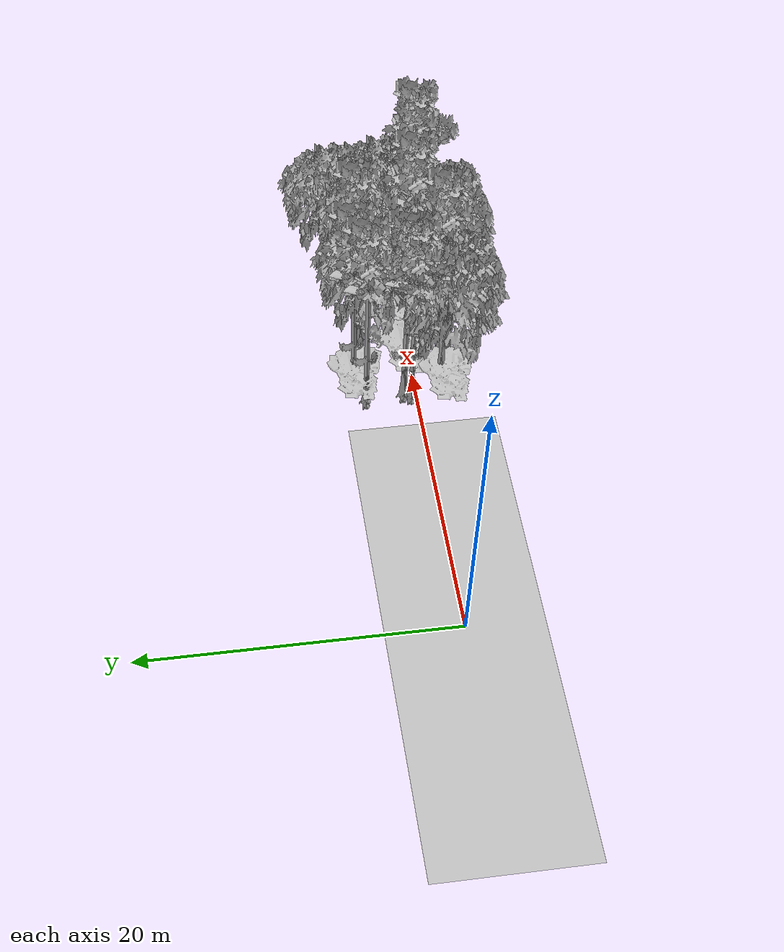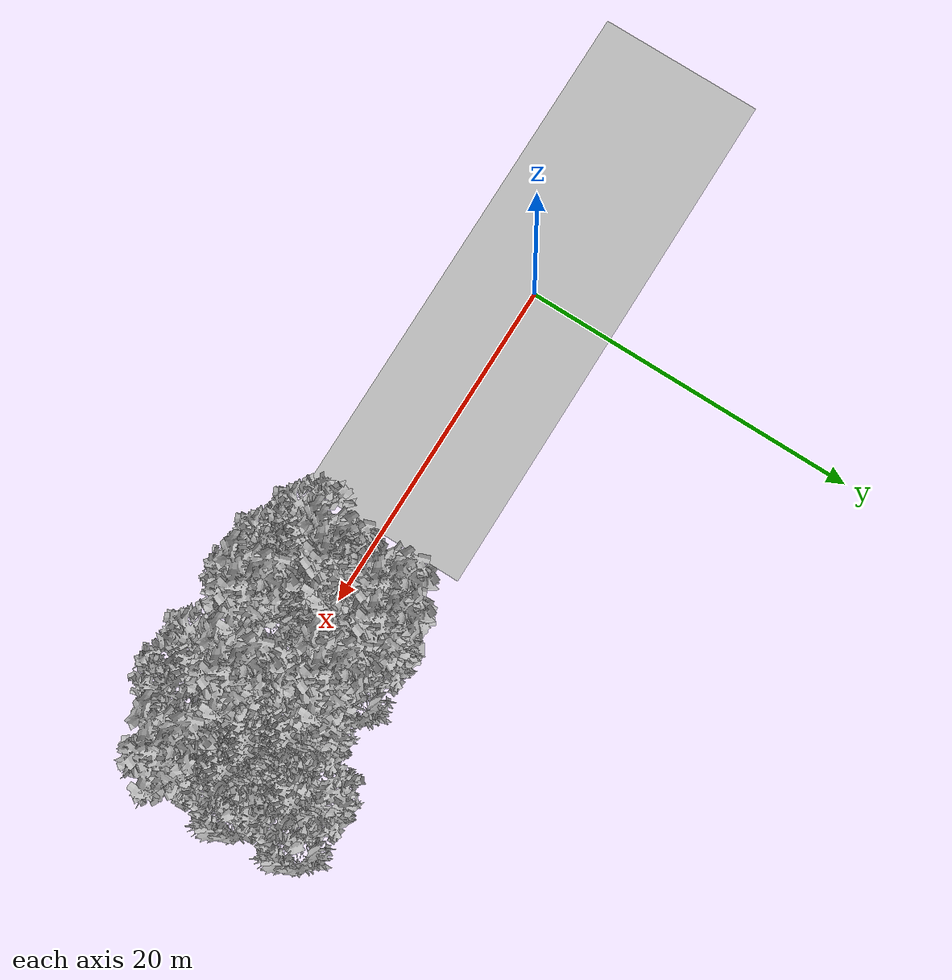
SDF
<sdf version="1.7">
 <world name="default">
  <model name="ground_plane">
   <static>1</static>
   <link name="link">
    <collision name="collision">
     <pose>-50 0 0 0 -0 0</pose>
     <geometry><plane><normal>0 0 1</normal><size>100 100</size></plane></geometry>
     <surface><contact><ode><min_depth>0.01</min_depth><max_vel>0</max_vel></ode></contact></surface>
    </collision>
    <visual name="grass">
     <cast_shadows>0</cast_shadows>
     <geometry>
      <mesh>
       <scale>0.5814285714285714 0.18142857142857144 0.1</scale>
       <uri>file://grass_plane/meshes/grass_plane.dae</uri>
      </mesh>
     </geometry>
    </visual>
   </link>
  </model>
  <model name="Tree 8">
   <static>1</static>
   <pose>19.640213285658405 3.5858710224812995 0 1.57079 -0 0</pose>
   <link name="link">
    <collision name="collision">
     <geometry><mesh><scale>3 2 3</scale><uri>model://tree_3/meshes/tree_3.obj</uri></mesh></geometry>
    </collision>
    <visual name="visual">
     <geometry><mesh><scale>3 2 3</scale><uri>model://tree_3/meshes/tree_3.obj</uri></mesh></geometry>
    </visual>
   </link>
  </model>
  <model name="Tree 16">
   <static>1</static>
   <pose>28.036003173326606 1.1155130580861758 0 1.57079 -0 0</pose>
   <link name="link">
    <collision name="collision">
     <geometry><mesh><scale>3.5 5 3.5</scale><uri>model://tree_2/meshes/tree_2.obj</uri></mesh></geometry>
    </collision>
    <visual name="visual">
     <geometry><mesh><scale>3.5 5 3.5</scale><uri>model://tree_2/meshes/tree_2.obj</uri></mesh></geometry>
    </visual>
   </link>
  </model>
  <model name="Tree 91">
   <static>1</static>
   <pose>26.74194513806782 -2.815628276112662 0 1.57079 -0 0</pose>
   <link name="link">
    <collision name="collision">
     <geometry><mesh><scale>3.5 5 3.5</scale><uri>model://tree_2/meshes/tree_2.obj</uri></mesh></geometry>
    </collision>
    <visual name="visual">
     <geometry><mesh><scale>3.5 5 3.5</scale><uri>model://tree_2/meshes/tree_2.obj</uri></mesh></geometry>
    </visual>
   </link>
  </model>
  <model name="Tree 125">
   <static>1</static>
   <pose>25.306755489831986 -1.0065204067243823 0 1.57079 -0 0</pose>
   <link name="link">
    <collision name="collision">
     <geometry><mesh><scale>3 2 3</scale><uri>model://tree_3/meshes/tree_3.obj</uri></mesh></geometry>
    </collision>
    <visual name="visual">
     <geometry><mesh><scale>3 2 3</scale><uri>model://tree_3/meshes/tree_3.obj</uri></mesh></geometry>
    </visual>
   </link>
  </model>
  <model name="Tree 127">
   <static>1</static>
   <pose>18.746111175804373 -1.6879353445712368 0 1.57079 -0 0</pose>
   <link name="link">
    <collision name="collision">
     <geometry><mesh><scale>3.5 5 3.5</scale><uri>model://tree_2/meshes/tree_2.obj</uri></mesh></geometry>
    </collision>
    <visual name="visual">
     <geometry><mesh><scale>3.5 5 3.5</scale><uri>model://tree_2/meshes/tree_2.obj</uri></mesh></geometry>
    </visual>
   </link>
  </model>
  <model name="Tree 143">
   <static>1</static>
   <pose>23.08256647444503 3.3096567821033673 0 1.57079 -0 0</pose>
   <link name="link">
    <collision name="collision">
     <geometry><mesh><scale>3.5 5 3.5</scale><uri>model://tree_9/meshes/tree_9.obj</uri></mesh></geometry>
    </collision>
    <visual name="visual">
     <geometry><mesh><scale>3.5 5 3.5</scale><uri>model://tree_9/meshes/tree_9.obj</uri></mesh></geometry>
    </visual>
   </link>
  </model>
  <model name="Tree 156">
   <static>1</static>
   <pose>26.909735092571935 2.7369447788487413 0 1.57079 -0 0</pose>
   <link name="link">
    <collision name="collision">
     <geometry><mesh><scale>3.5 5 3.5</scale><uri>model://tree_2/meshes/tree_2.obj</uri></mesh></geometry>
    </collision>
    <visual name="visual">
     <geometry><mesh><scale>3.5 5 3.5</scale><uri>model://tree_2/meshes/tree_2.obj</uri></mesh></geometry>
    </visual>
   </link>
  </model>
  <model name="Tree 162">
   <static>1</static>
   <pose>19.571099987906152 4.060107502592874 0 1.57079 -0 0</pose>
   <link name="link">
    <collision name="collision">
     <geometry><mesh><scale>3.5 5 3.5</scale><uri>model://tree_9/meshes/tree_9.obj</uri></mesh></geometry>
    </collision>
    <visual name="visual">
     <geometry><mesh><scale>3.5 5 3.5</scale><uri>model://tree_9/meshes/tree_9.obj</uri></mesh></geometry>
    </visual>
   </link>
  </model>
  <model name="Tree 209">
   <static>1</static>
   <pose>21.538505121199037 -0.10871446336400581 0 1.57079 -0 0</pose>
   <link name="link">
    <collision name="collision">
     <geometry><mesh><scale>3 2 3</scale><uri>model://tree_3/meshes/tree_3.obj</uri></mesh></geometry>
    </collision>
    <visual name="visual">
     <geometry><mesh><scale>3 2 3</scale><uri>model://tree_3/meshes/tree_3.obj</uri></mesh></geometry>
    </visual>
   </link>
  </model>
  <model name="Tree 253">
   <static>1</static>
   <pose>21.880489793692846 3.237697912522485 0 1.57079 -0 0</pose>
   <link name="link">
    <collision name="collision">
     <geometry><mesh><scale>3.5 5 3.5</scale><uri>model://tree_2/meshes/tree_2.obj</uri></mesh></geometry>
    </collision>
    <visual name="visual">
     <geometry><mesh><scale>3.5 5 3.5</scale><uri>model://tree_2/meshes/tree_2.obj</uri></mesh></geometry>
    </visual>
   </link>
  </model>
  <model name="Tree 256">
   <static>1</static>
   <pose>29.79658592757349 1.0102118535115494 0 1.57079 -0 0</pose>
   <link name="link">
    <collision name="collision">
     <geometry><mesh><scale>3.5 5 3.5</scale><uri>model://tree_2/meshes/tree_2.obj</uri></mesh></geometry>
    </collision>
    <visual name="visual">
     <geometry><mesh><scale>3.5 5 3.5</scale><uri>model://tree_2/meshes/tree_2.obj</uri></mesh></geometry>
    </visual>
   </link>
  </model>
  <model name="Tree 282">
   <static>1</static>
   <pose>18.753487047514312 -2.4357668933588386 0 1.57079 -0 0</pose>
   <link name="link">
    <collision name="collision">
     <geometry><mesh><scale>3 2 3</scale><uri>model://tree_3/meshes/tree_3.obj</uri></mesh></geometry>
    </collision>
    <visual name="visual">
     <geometry><mesh><scale>3 2 3</scale><uri>model://tree_3/meshes/tree_3.obj</uri></mesh></geometry>
    </visual>
   </link>
  </model>
  <model name="Tree 303">
   <static>1</static>
   <pose>25.347805980141686 -0.662011833590741 0 1.57079 -0 0</pose>
   <link name="link">
    <collision name="collision">
     <geometry><mesh><scale>3.5 5 3.5</scale><uri>model://tree_9/meshes/tree_9.obj</uri></mesh></geometry>
    </collision>
    <visual name="visual">
     <geometry><mesh><scale>3.5 5 3.5</scale><uri>model://tree_9/meshes/tree_9.obj</uri></mesh></geometry>
    </visual>
   </link>
  </model>
  <model name="Tree 346">
   <static>1</static>
   <pose>29.38883993557694 4.580060066565881 0 1.57079 -0 0</pose>
   <link name="link">
    <collision name="collision">
     <geometry><mesh><scale>3.5 5 3.5</scale><uri>model://tree_2/meshes/tree_2.obj</uri></mesh></geometry>
    </collision>
    <visual name="visual">
     <geometry><mesh><scale>3.5 5 3.5</scale><uri>model://tree_2/meshes/tree_2.obj</uri></mesh></geometry>
    </visual>
   </link>
  </model>
  <model name="Tree 348">
   <static>1</static>
   <pose>18.233512308177197 0.33193588689649367 0 1.57079 -0 0</pose>
   <link name="link">
    <collision name="collision">
     <geometry><mesh><scale>3.5 5 3.5</scale><uri>model://tree_9/meshes/tree_9.obj</uri></mesh></geometry>
    </collision>
    <visual name="visual">
     <geometry><mesh><scale>3.5 5 3.5</scale><uri>model://tree_9/meshes/tree_9.obj</uri></mesh></geometry>
    </visual>
   </link>
  </model>
  <model name="Tree 402">
   <static>1</static>
   <pose>30.088883585714925 -1.46102089674425 0 1.57079 -0 0</pose>
   <link name="link">
    <collision name="collision">
     <geometry><mesh><scale>3.5 5 3.5</scale><uri>model://tree_9/meshes/tree_9.obj</uri></mesh></geometry>
    </collision>
    <visual name="visual">
     <geometry><mesh><scale>3.5 5 3.5</scale><uri>model://tree_9/meshes/tree_9.obj</uri></mesh></geometry>
    </visual>
   </link>
  </model>
  <model name="Tree 412">
   <static>1</static>
   <pose>28.915560899038738 0.8342397077623769 0 1.57079 -0 0</pose>
   <link name="link">
    <collision name="collision">
     <geometry><mesh><scale>4 2.5 4</scale><uri>model://tree_1/meshes/tree_1.obj</uri></mesh></geometry>
    </collision>
    <visual name="visual">
     <geometry><mesh><scale>4 2.5 4</scale><uri>model://tree_1/meshes/tree_1.obj</uri></mesh></geometry>
    </visual>
   </link>
  </model>
  <model name="Tree 445">
   <static>1</static>
   <pose>28.53476444859065 1.3999723930114172 0 1.57079 -0 0</pose>
   <link name="link">
    <collision name="collision">
     <geometry><mesh><scale>3.5 5 3.5</scale><uri>model://tree_2/meshes/tree_2.obj</uri></mesh></geometry>
    </collision>
    <visual name="visual">
     <geometry><mesh><scale>3.5 5 3.5</scale><uri>model://tree_2/meshes/tree_2.obj</uri></mesh></geometry>
    </visual>
   </link>
  </model>
  <model name="Tree 447">
   <static>1</static>
   <pose>20.857338069392526 -2.5586899052395147 0 1.57079 -0 0</pose>
   <link name="link">
    <collision name="collision">
     <geometry><mesh><scale>3.5 5 3.5</scale><uri>model://tree_2/meshes/tree_2.obj</uri></mesh></geometry>
    </collision>
    <visual name="visual">
     <geometry><mesh><scale>3.5 5 3.5</scale><uri>model://tree_2/meshes/tree_2.obj</uri></mesh></geometry>
    </visual>
   </link>
  </model>
  <model name="Tree 463">
   <static>1</static>
   <pose>18.44998086203799 0.8095790474227922 0 1.57079 -0 0</pose>
   <link name="link">
    <collision name="collision">
     <geometry><mesh><scale>3.5 5 3.5</scale><uri>model://tree_9/meshes/tree_9.obj</uri></mesh></geometry>
    </collision>
    <visual name="visual">
     <geometry><mesh><scale>3.5 5 3.5</scale><uri>model://tree_9/meshes/tree_9.obj</uri></mesh></geometry>
    </visual>
   </link>
  </model>
  <model name="Tree 467">
   <static>1</static>
   <pose>21.71848573362638 -2.1298484733536984 0 1.57079 -0 0</pose>
   <link name="link">
    <collision name="collision">
     <geometry><mesh><scale>3.5 5 3.5</scale><uri>model://tree_9/meshes/tree_9.obj</uri></mesh></geometry>
    </collision>
    <visual name="visual">
     <geometry><mesh><scale>3.5 5 3.5</scale><uri>model://tree_9/meshes/tree_9.obj</uri></mesh></geometry>
    </visual>
   </link>
  </model>
  <model name="Tree 490">
   <static>1</static>
   <pose>18.20436632217657 3.3717319705688915 0 1.57079 -0 0</pose>
   <link name="link">
    <collision name="collision">
     <geometry><mesh><scale>3.5 5 3.5</scale><uri>model://tree_9/meshes/tree_9.obj</uri></mesh></geometry>
    </collision>
    <visual name="visual">
     <geometry><mesh><scale>3.5 5 3.5</scale><uri>model://tree_9/meshes/tree_9.obj</uri></mesh></geometry>
    </visual>
   </link>
  </model>
  <model name="Tree 526">
   <static>1</static>
   <pose>29.04195498408103 2.81753438399522 0 1.57079 -0 0</pose>
   <link name="link">
    <collision name="collision">
     <geometry><mesh><scale>3 2 3</scale><uri>model://tree_3/meshes/tree_3.obj</uri></mesh></geometry>
    </collision>
    <visual name="visual">
     <geometry><mesh><scale>3 2 3</scale><uri>model://tree_3/meshes/tree_3.obj</uri></mesh></geometry>
    </visual>
   </link>
  </model>
 </world>
</sdf>
